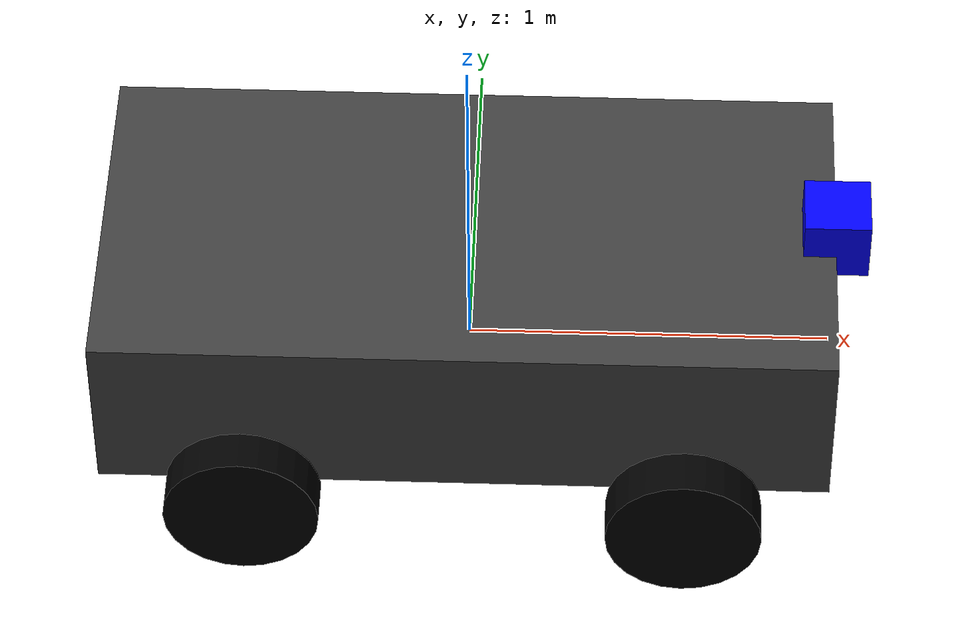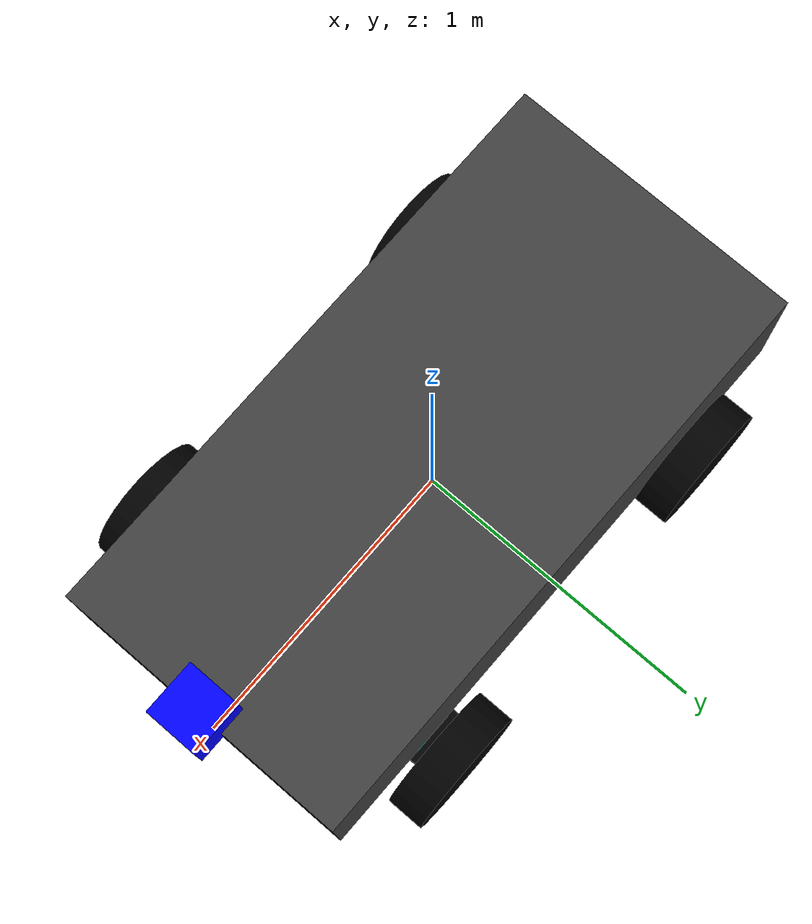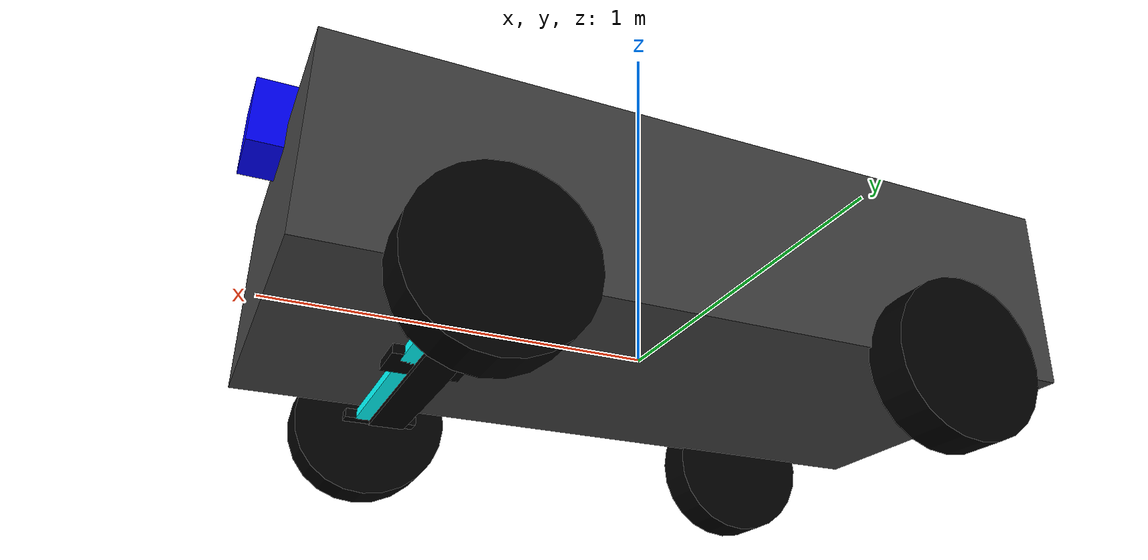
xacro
<?xml version="1.0"?>
<robot
    xmlns:gazebo="http://playerstage.sourceforge.net/gazebo/xmlschema/#gz"
    xmlns:model="http://playerstage.sourceforge.net/gazebo/xmlschema/#model"
    xmlns:sensor="http://playerstage.sourceforge.net/gazebo/xmlschema/#sensor"
    xmlns:body="http://playerstage.sourceforge.net/gazebo/xmlschema/#body"
    xmlns:geom="http://playerstage.sourceforge.net/gazebo/xmlschema/#geom"
    xmlns:joint="http://playerstage.sourceforge.net/gazebo/xmlschema/#joint"
    xmlns:controller="http://playerstage.sourceforge.net/gazebo/xmlschema/#controller"
    xmlns:interface="http://playerstage.sourceforge.net/gazebo/xmlschema/#interface"
    xmlns:rendering="http://playerstage.sourceforge.net/gazebo/xmlschema/#rendering"
    xmlns:physics="http://playerstage.sourceforge.net/gazebo/xmlschema/#physics"
    xmlns:xacro="http://www.ros.org/wiki/xacro"
    name="navgroup">

    <!-- Physical Constant Macros -->
    <xacro:property name="M_PI" value="3.1415926535897931" />

    <!-- Dimension Macros -->

        <!-- Dimension Macros -->
    <xacro:property name="carLength" value="2.0" />
    <xacro:property name="carWidth" value="1.00" />
    <xacro:property name="carHeight" value="0.5" />
    <xacro:property name="wheelRadius" value="0.2125" />
    <xacro:property name="wheelWidth" value="0.125" />

    <!-- Physical Material Macros -->
    <material name="Red">
    	<color rgba="1.0 0 0 1.0"/>
    </material>
    <material name="Yellow">
        <color rgba="1.0 1.0 0 1.0"/>
    </material>
    <material name="Grey">
        <color rgba="0.25 0.25 0.25 1.0"/>
    </material>
    <material name="Green">
    	<color rgba="0 1.0 0 1.0"/>
    </material>
    <material name="Blue">
    	<color rgba="0 0 1.0 1.0"/>
    </material>
    <material name="Black">
    	<color rgba="0 0 0 1.0"/>
    </material>
    <material name="Aqua">
    	<color rgba="0 255 255 1.0"/>
    </material>

    <!-- Main body -->
    <link name="base_link">
        <inertial>
            <mass value="0.2" />
            <origin xyz="0 0 0" />
            <inertia  ixx="0.2" ixy="0.0"  ixz="0.0"  iyy="0.2"  iyz="0.0"  izz="0.2" />
        </inertial>
        <visual>
            <origin xyz="0 0 0.18" rpy="0 0 0" />
            <geometry>
                <box size="${carLength} ${carWidth} ${carHeight}" />
            </geometry>
            <material name="Grey"/>
        </visual>
        <collision>
            <origin xyz="0 0 0" rpy="0 0 0" />
            <geometry>
                <box size="${carLength} ${carWidth} ${carHeight}" />
            </geometry>
        </collision>
    </link>
    <gazebo reference="base_link">
        <material>Gazebo/Grey</material>
    </gazebo>

    <!-- Front link of Ackermann -->
    <!-- Joins to the Car body -->
    <joint name="front_joint" type="fixed">
    	<parent link="base_link"/>
    	<child link="front_link"/>
    	<origin xyz="0.603 0.0 -0.1"/>
    </joint>
    <link name="front_link">
        <inertial>
            <mass value="0.01" />
            <origin xyz="0 0 0" />
            <inertia  ixx="0.01" ixy="0.0"  ixz="0.0"  iyy="0.01"  iyz="0.0"  izz="0.01" />
        </inertial>
        <visual>
            <geometry>
                <box size="${carLength*0.05} ${carWidth} ${carHeight*0.05}" />
            </geometry>
            <material name="Aqua"/>
        </visual>
        <collision>
            <geometry>
                <box size="${carLength*0.05} ${carWidth} ${carHeight*0.05}" />
            </geometry>
        </collision>
    </link>
    <gazebo reference="front_link">
        <material>Gazebo/Black</material>
    </gazebo>

    <!-- a link aligned with the steer direction -->
    <joint name="steer_joint" type="revolute" >
        <limit lower="-0.31415" upper="0.31415" effort="100" velocity="10" />
        <axis xyz="0 0 1" />
        <parent link="front_link" />
        <child link="steer_link" />
        <origin xyz="0.0 0.0 0.0" rpy="0 0 0" />
    </joint>
    <link name="steer_link">
        <inertial>
            <mass value="0.01" />
            <origin xyz="0 0 0" />
            <inertia  ixx="0.01" ixy="0.0"  ixz="0.0"  iyy="0.01"  iyz="0.0"  izz="0.01" />
        </inertial>
        <visual>
            <origin xyz="-0.02 0 0" />
            <geometry>
                <box size="${carLength*0.1} ${carWidth*0.133} ${carHeight*0.05}" />
            </geometry>
            <material name="Black"/>
        </visual>
        <collision>
            <origin xyz="0.02 0 0" />
            <geometry>
                <box size="${carLength*0.1} ${carWidth*0.133} ${carHeight*0.05}" />
            </geometry>
        </collision>
    </link>
    <gazebo reference="steer_link">
        <material>Gazebo/Black</material>
    </gazebo>

    <!-- the left Ackermann bar -->
    <joint name="front_left_bar_joint" type="revolute" >
        <limit lower="-0.31415" upper="0.31415" effort="100" velocity="10" />
        <axis xyz="0 0 1" />
        <parent link="front_link" />
        <child link="front_left_bar_link" />
        <origin xyz="0.0 0.5525 0.0" rpy="0 0 0" />
    </joint>
    <link name="front_left_bar_link">
        <inertial>
            <mass value="0.01" />
            <origin xyz="0 0 0" />
            <inertia  ixx="0.01" ixy="0.0"  ixz="0.0"  iyy="0.01"  iyz="0.0"  izz="0.01" />
        </inertial>
        <visual>
            <origin xyz="-0.02 0 0" />
            <geometry>
                <box size="${carLength*0.1} ${carWidth*0.133} ${carHeight*0.05}" />
            </geometry>
            <material name="Black"/>
        </visual>
        <collision>
            <origin xyz="-0.02 0 0" />
            <geometry>
                <box size="${carLength*0.1} ${carWidth*0.133} ${carHeight*0.05}" />
            </geometry>
        </collision>
    </link>
    <gazebo reference="front_left_bar_link">
        <material>Gazebo/Black</material>
    </gazebo>

    <!-- the right Ackermann bar -->
    <joint name="front_right_bar_joint" type="revolute" >
        <limit lower="-0.31415" upper="0.31415" effort="100" velocity="10" />
        <axis xyz="0 0 1" />
        <parent link="front_link" />
        <child link="front_right_bar_link" />
        <origin xyz="0.0 -0.5525 0.0" rpy="0 0 0" />
    </joint>
    <link name="front_right_bar_link">
        <inertial>
            <mass value="0.01" />
            <origin xyz="0 0 0" />
            <inertia  ixx="0.01" ixy="0.0"  ixz="0.0"  iyy="0.01"  iyz="0.0"  izz="0.01" />
        </inertial>
        <visual>
            <origin xyz="-0.02 0 0" />
            <geometry>
                <box size="${carLength*0.1} ${carWidth*0.133} ${carHeight*0.05}" />
            </geometry>
            <material name="Black"/>
        </visual>
        <collision>
            <origin xyz="-0.02 0 0" />
            <geometry>
                <box size="${carLength*0.1} ${carWidth*0.133} ${carHeight*0.05}" />
            </geometry>
        </collision>
    </link>
    <gazebo reference="front_right_bar_link">
        <material>Gazebo/Black</material>
    </gazebo>

	<!-- the front left wheel -->
    <joint name="front_left_wheel_joint" type="continuous" >
        <axis xyz="0 1 0" />
        <parent link="front_left_bar_link" />
        <child link="front_left_wheel_link" />
        <origin xyz="0 0.04 0" rpy="0 0 0" />
    </joint>
    <link name="front_left_wheel_link">
        <inertial>
            <mass value="0.01" />
            <origin xyz="0 0 0" />
            <inertia  ixx="0.01" ixy="0.0"  ixz="0.0"  iyy="0.01"  iyz="0.0"  izz="0.01" />
        </inertial>
        <visual>
            <origin xyz="0 0 0" rpy="${M_PI/2} 0 0" />
            <geometry>
                <cylinder radius="${wheelRadius}" length="${wheelWidth}" />
            </geometry>
            <material name="Black"/>
        </visual>
        <collision>
            <origin xyz="0 0 0" rpy="${M_PI/2} 0 0" />
            <geometry>
                <cylinder radius="${wheelRadius}" length="${wheelWidth}" />
            </geometry>
        </collision>
    </link>
    <gazebo reference="front_left_wheel_link">
        <material>Gazebo/Black</material>
    </gazebo>

	<!-- the front right wheel -->
    <joint name="front_right_wheel_joint" type="continuous" >
        <axis xyz="0 1 0" />
        <parent link="front_right_bar_link" />
        <child link="front_right_wheel_link" />
        <origin xyz="0 -0.04 0" rpy="0 0 0" />
    </joint>
    <link name="front_right_wheel_link">
        <inertial>
            <mass value="0.01" />
            <origin xyz="0 0 0" />
            <inertia  ixx="0.01" ixy="0.0"  ixz="0.0"  iyy="0.01"  iyz="0.0"  izz="0.01" />
        </inertial>
        <visual>
            <origin xyz="0 0 0" rpy="${M_PI/2} 0 0" />
            <geometry>
                <cylinder radius="${wheelRadius}" length="${wheelWidth}" />
            </geometry>
            <material name="Black"/>
        </visual>
        <collision>
            <origin xyz="0 0 0" rpy="${M_PI/2} 0 0" />
            <geometry>
                <cylinder radius="${wheelRadius}" length="${wheelWidth}" />
            </geometry>
        </collision>
    </link>
    <gazebo reference="front_right_wheel_link">
        <material>Gazebo/Black</material>
        <turnGravityOff>false</turnGravityOff>
    </gazebo>

	<!-- the Ackerman bar -->
    <joint name="ackermann_joint" type="revolute" >
        <limit lower="-0.31415" upper="0.31415" effort="100" velocity="10" />
        <axis xyz="0 0 1" />
        <parent link="steer_link" />
        <child link="ackermann_bar_link" />
        <origin xyz="-0.04 0 0" rpy="0 0 0" />
    </joint>
    <link name="ackermann_bar_link">
        <inertial>
            <mass value="0.01" />
            <origin xyz="0 0 0" />
            <inertia  ixx="0.01" ixy="0.0"  ixz="0.0"  iyy="0.01"  iyz="0.0"  izz="0.01" />
        </inertial>
        <visual>
            <geometry>
                <box size="${carLength*0.05} ${carWidth} ${carHeight*0.1}" />
            </geometry>
            <material name="Black"/>
        </visual>
        <collision>
            <geometry>
                <box size="${carLength*0.05} ${carWidth} ${carHeight*0.1}" />
            </geometry>
        </collision>
    </link>
    <gazebo reference="front_link">
        <material>Gazebo/Black</material>
    </gazebo>
    <gazebo reference="ackermann_bar_link">
        <material>Gazebo/Blue</material>
    </gazebo>

	<!-- Gazebo Ackermann loop joints -->
    <gazebo>
      <joint:hinge name="ackermann_left_bar_joint">
        <body1>ackermann_bar_link</body1>
        <body2>front_left_bar_link</body2>
        <anchor>ackermann_bar_link</anchor>
        <axis>0 0 1</axis>
        <anchorOffset>0 0.5525 0</anchorOffset>
      </joint:hinge>
    </gazebo>
    <gazebo>
      <joint:hinge name="ackermann_right_bar_joint">
        <body1>ackermann_bar_link</body1>
        <body2>front_right_bar_link</body2>
        <anchor>ackermann_bar_link</anchor>
        <axis>0 0 1</axis>
        <anchorOffset>0 -0.5525 0</anchorOffset>
      </joint:hinge>
    </gazebo>

	<!-- the back left wheel -->
    <joint name="back_left_wheel_joint" type="continuous" >
        <axis xyz="0 1 0" />
        <parent link="base_link" />
        <child link="back_left_wheel_link" />
        <origin xyz="-0.603 0.5525 -0.1" rpy="0 0 0" />
    </joint>
    <link name="back_left_wheel_link">
        <inertial>
            <mass value="0.01" />
            <origin xyz="0 0 0" />
            <inertia  ixx="0.01" ixy="0.0"  ixz="0.0"  iyy="0.01"  iyz="0.0"  izz="0.01" />
        </inertial>
        <visual>
            <origin xyz="0 0 0" rpy="${M_PI/2} 0 0" />
            <geometry>
                <cylinder radius="${wheelRadius}" length="${wheelWidth}" />
            </geometry>
            <material name="Black"/>
        </visual>
        <collision>
            <origin xyz="0 0 0" rpy="${M_PI/2} 0 0" />
            <geometry>
                <cylinder radius="${wheelRadius}" length="${wheelWidth}" />
            </geometry>
        </collision>
    </link>
    <gazebo reference="back_left_wheel_link">
        <material>Gazebo/Black</material>
    </gazebo>

	<!-- the back right wheel -->
    <joint name="back_right_wheel_joint" type="continuous" >
        <axis xyz="0 1 0" />
        <parent link="base_link" />
        <child link="back_right_wheel_link" />
        <origin xyz="-0.603 -0.5525 -0.1" rpy="0 0 0" />
    </joint>
    <link name="back_right_wheel_link">
        <inertial>
            <mass value="0.01" />
            <origin xyz="0 0 0" />
            <inertia  ixx="0.01" ixy="0.0"  ixz="0.0"  iyy="0.01"  iyz="0.0"  izz="0.01" />
        </inertial>
        <visual>
            <origin xyz="0 0 0" rpy="${M_PI/2} 0 0" />
            <geometry>
                <cylinder radius="${wheelRadius}" length="${wheelWidth}" />
            </geometry>
            <material name="Black"/>
        </visual>
        <collision>
            <origin xyz="0 0 0" rpy="${M_PI/2} 0 0" />
            <geometry>
                <cylinder radius="${wheelRadius}" length="${wheelWidth}" />
            </geometry>
        </collision>
    </link>
    <gazebo reference="back_right_wheel_link">
        <material>Gazebo/Black</material>
    </gazebo>

    <!-- Ackermann plugin -->
    <gazebo>
      <controller:ackermann_plugin name="ackermann_controller"
			           plugin="libackermann_plugin.so">
	<alwaysOn>true</alwaysOn>
	<update>100</update>
	<updateRate>100.0</updateRate>
	<leftJoint>back_left_wheel_joint</leftJoint>
	<rightJoint>back_right_wheel_joint</rightJoint>
	<steerJoint>steer_joint</steerJoint>
	<wheelSeparationWidth>1.13</wheelSeparationWidth>
	<wheelSeparationLength>1.206</wheelSeparationLength>
	<wheelDiameter>0.425</wheelDiameter>
	<driveTorque>5</driveTorque>
	<steerTorque>5</steerTorque>
	<interface:position name="position_iface_0" />
	<robotNamespace>/</robotNamespace>
	<topicName>pilot/drive</topicName>
      </controller:ackermann_plugin>

     <canonicalBody>base_footprint</canonicalBody>

    <!-- this publishes empty joint_states due to no transmission, but
    triggering robot_state_publisher to publish tf between fixed joints in erratic,
    (e.g. base_laser_link for the base_scan frame) -->
    <controller:gazebo_ros_controller_manager name="gazebo_ros_controller_manager" plugin="libgazebo_ros_controller_manager.so">
      <alwaysOn>true</alwaysOn>
      <updateRate>100.0</updateRate>
      <interface:audio name="gazebo_ros_controller_manager_dummy_iface" />
    </controller:gazebo_ros_controller_manager>

    </gazebo>

        <joint name="laser_base_mount_joint" type="fixed">
            <origin xyz="0 0 0.05" rpy="0 0 0" />
            <parent link="base_link"/>
            <child link="laser_base_link"/>
        </joint>

        <link name="laser_base_link" type="fixed">
            <inertial>
                <mass value="0.1"/>
                <origin xyz="0 0 0.0"/>
                <inertia ixx="0.1" ixy="0" ixz="0" iyy="0.1" iyz="0" izz="0.1"/>
            </inertial>

            <visual>
                <origin rpy="0 0 0" xyz="1.0 0 0.4"/>
                <geometry>
                    <box size="0.18 0.18 0.18"/>
                </geometry>
                <material name="Blue"/>
            </visual>

            <collision>
                <origin rpy="0 0 0" xyz="1.0 0 0.4"/>
                <geometry>
                    <box size="0.18 0.18 0.18"/>
                </geometry>
            </collision>
        </link>

        <joint name="base_scan_joint" type="fixed" >
            <origin xyz="0 0 0.05" rpy="0 0 0" />
            <parent link="laser_base_link" />
            <child link="laser"/>
        </joint>

        <link name="laser" type="laser">
            <inertial>
                <mass value="0.1"/>
                <origin xyz="0 0 0.0"/>
                <inertia ixx="0.1" ixy="0" ixz="0" iyy="0.1" iyz="0" izz="0.1"/>
            </inertial>

            <visual>
                <origin rpy="0 0 0" xyz="0 0 0.014"/>
                <geometry>
                    <cylinder radius="0.0229" length="0.028"/>
                </geometry>
                <material name="Blue"/>
            </visual>

            <collision>
                <origin rpy="0 0 0" xyz="0 0 0.014"/>
                <geometry>
                    <cylinder radius="0.0229" length="0.028"/>
                </geometry>
            </collision>
        </link>

        <gazebo reference="laser">
            <sensor:ray name="laser">
                <rayCount>683</rayCount>
                <rangeCount>683</rangeCount>
                <laserCount>1</laserCount>

                <origin>0.0 0.0 0.0</origin>
                <displayRays>false</displayRays>

                <minAngle>0</minAngle>
                <maxAngle>180</maxAngle>

                <minRange>0.06</minRange>
                <maxRange>4.0</maxRange>
                <resRange>0.001</resRange>
                <updateRate>10.0</updateRate>

                <controller:gazebo_ros_laser name="gazebo_ros_base_scan_link_controller" plugin="libgazebo_ros_laser.so">
                    <gaussianNoise>0.005</gaussianNoise>
                    <alwaysOn>true</alwaysOn>
                    <updateRate>10.0</updateRate>
                    <topicName>base_scan/scan</topicName>
                    <frameName>laser</frameName>
                    <interface:laser name="gazebo_ros_laser_iface"/>
                </controller:gazebo_ros_laser>
            </sensor:ray>
        </gazebo>

        <gazebo reference="laser_base_link">
            <material>Gazebo/Blue</material>
        </gazebo>

        <gazebo reference="laser">
            <material>Gazebo/Blue</material>
        </gazebo>
</robot>
